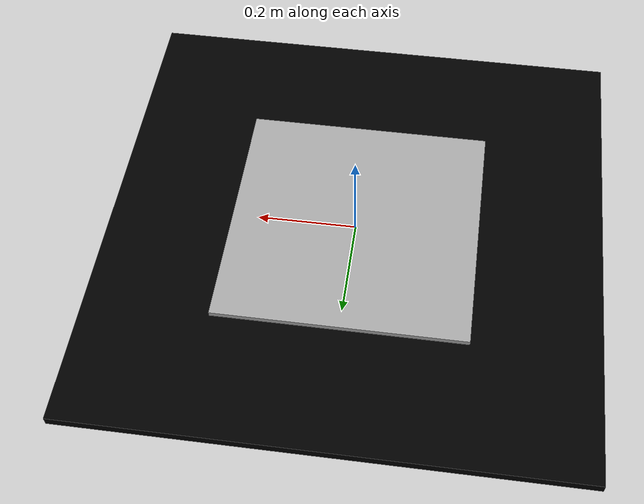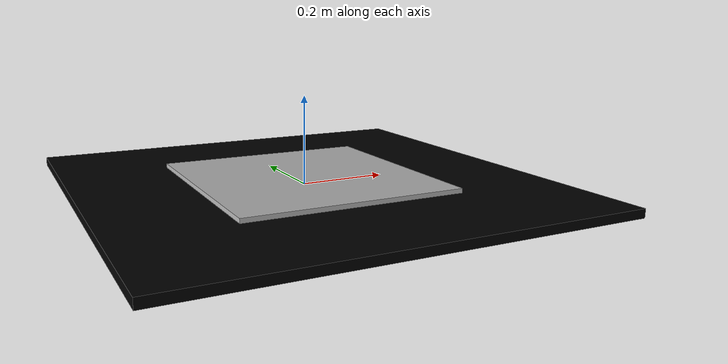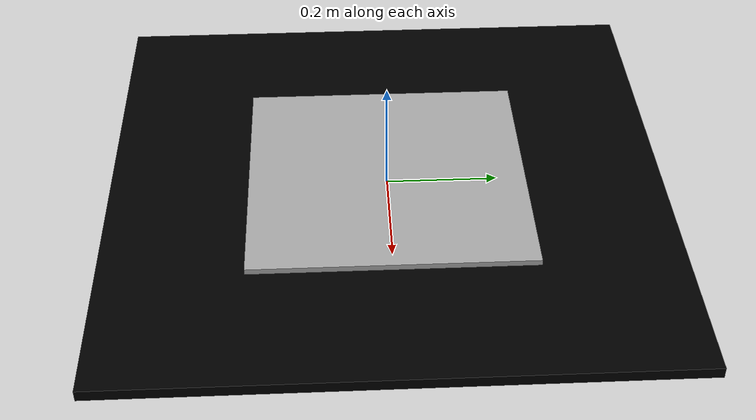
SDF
<?xml version="1.0" ?>
<sdf version="1.3">
     <model name="qr_id1">
    <static>true</static>
    <pose>0 0 0 0 0 0</pose>

    <link name="base">
      <collision name="collision">
        <geometry>

          <mesh>
            <uri>model://qr_base/meshes/qr_base.dae</uri>
          </mesh>
        </geometry>
      </collision>
      <visual name="visual">
        <geometry>
          <mesh>
            <uri>model://qr_base/meshes/qr_base.dae</uri>
          </mesh>
        </geometry>
        <cast_shadows>false</cast_shadows>
      </visual>
    </link>

		<joint name="base_marker_joint" type="fixed">
			<parent>base</parent>
			<child>id1_25cm</child>
		</joint>

		<link name="id1">
    	<pose>0 0 0.01 0 0 1.57</pose>
      <collision name="collision">
        <geometry>
          <mesh>
            <uri>model://id1/meshes/id1.dae</uri>
          </mesh>
        </geometry>
      </collision>
      <visual name="visual">
        <geometry>
          <mesh>
            <uri>model://id1/meshes/id1.dae</uri>
          </mesh>
        </geometry>
        <cast_shadows>false</cast_shadows>
      </visual>
    </link>

  </model>
</sdf>
